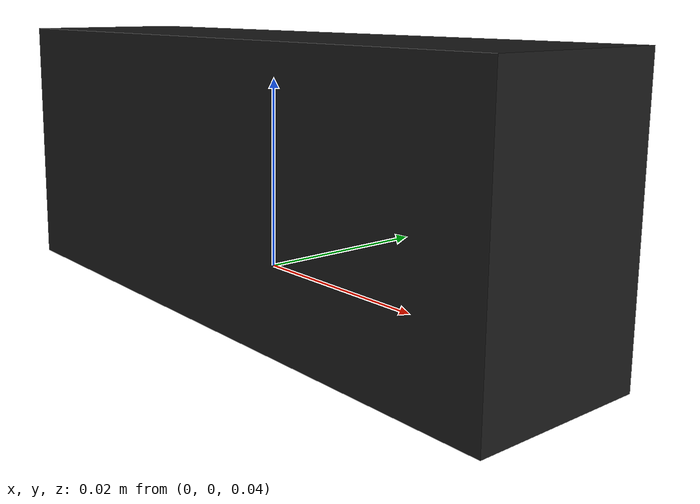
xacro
<?xml version="1.0"?>
<robot name="lra_camera" xmlns:xacro="http://ros.org/wiki/xacro">

  <xacro:macro name="lra_camera_mount" params="
    parent_link:=tool0
    camera_name:=camera
    translation_x:=0
    translation_y:=0
    translation_z:=0.05
    rotation_roll:=0
    rotation_pitch:=${pi}
    rotation_yaw:=0">

    <!-- Camera Link -->
    <link name="${camera_name}_link">
      <visual>
        <geometry>
          <box size="0.073 0.019 0.029"/> <!-- Logitech StreamCam -->
        </geometry>
        <material name="black">
          <color rgba="0.1 0.1 0.1 1"/>
        </material>
      </visual>
      <collision>
        <geometry>
          <box size="0.073 0.019 0.029"/>
        </geometry>
      </collision>
      <inertial>
        <mass value="0.113"/>
        <inertia ixx="0.00001" ixy="0" ixz="0" iyy="0.00001" iyz="0" izz="0.00001"/>
      </inertial>
    </link>

    <!-- Optical Frame -->
    <link name="${camera_name}_optical_frame"/>

    <!-- Parent to Camera Joint -->
    <joint name="${parent_link}_to_${camera_name}" type="fixed">
      <parent link="${parent_link}"/>
      <child link="${camera_name}_link"/>
      <origin xyz="${translation_x} ${translation_y} ${translation_z}"
              rpy="${rotation_roll} ${rotation_pitch} ${rotation_yaw}"/>
    </joint>

    <!-- Camera to Optical Joint -->
    <joint name="${camera_name}_to_optical" type="fixed">
      <parent link="${camera_name}_link"/>
      <child link="${camera_name}_optical_frame"/>
      <origin xyz="0 0 0" rpy="${-pi/2} 0 ${-pi/2}"/>
    </joint>

  </xacro:macro>

  <!-- Preset Configurations -->

  <!-- Overhead Mounting (Default) -->
  <xacro:macro name="lra_camera_overhead" params="parent_link:=tool0 camera_name:=camera">
    <xacro:lra_camera_mount
      parent_link="${parent_link}"
      camera_name="${camera_name}"
      translation_z="0.05"
      rotation_pitch="${pi}"/>
  </xacro:macro>

  <!-- Angled Mounting -->
  <xacro:macro name="lra_camera_angled" params="parent_link:=tool0 camera_name:=camera angle_deg:=45">
    <xacro:lra_camera_mount
      parent_link="${parent_link}"
      camera_name="${camera_name}"
      translation_x="${0.05*sin(angle_deg*pi/180)}"
      translation_z="${0.05*cos(angle_deg*pi/180)}"
      rotation_pitch="${pi - angle_deg*pi/180}"/>
  </xacro:macro>

  <!-- In-Hand Mounting -->
  <xacro:macro name="lra_camera_in_hand" params="parent_link:=tool0 camera_name:=camera">
    <xacro:lra_camera_mount
      parent_link="${parent_link}"
      camera_name="${camera_name}"
      translation_x="0.05"
      translation_z="0.02"
      rotation_pitch="0"/>
  </xacro:macro>

  <xacro:arg name="parent_link" default="tool0"/>
  <xacro:arg name="camera_name" default="camera"/>
  <xacro:arg name="translation_z" default="0.05"/>
  <!-- to be removed -->
  <link name="$(arg parent_link)"/>
  <xacro:lra_camera_mount
    parent_link="$(arg parent_link)"
    camera_name="$(arg camera_name)"
    translation_z="$(arg translation_z)" />

</robot>
